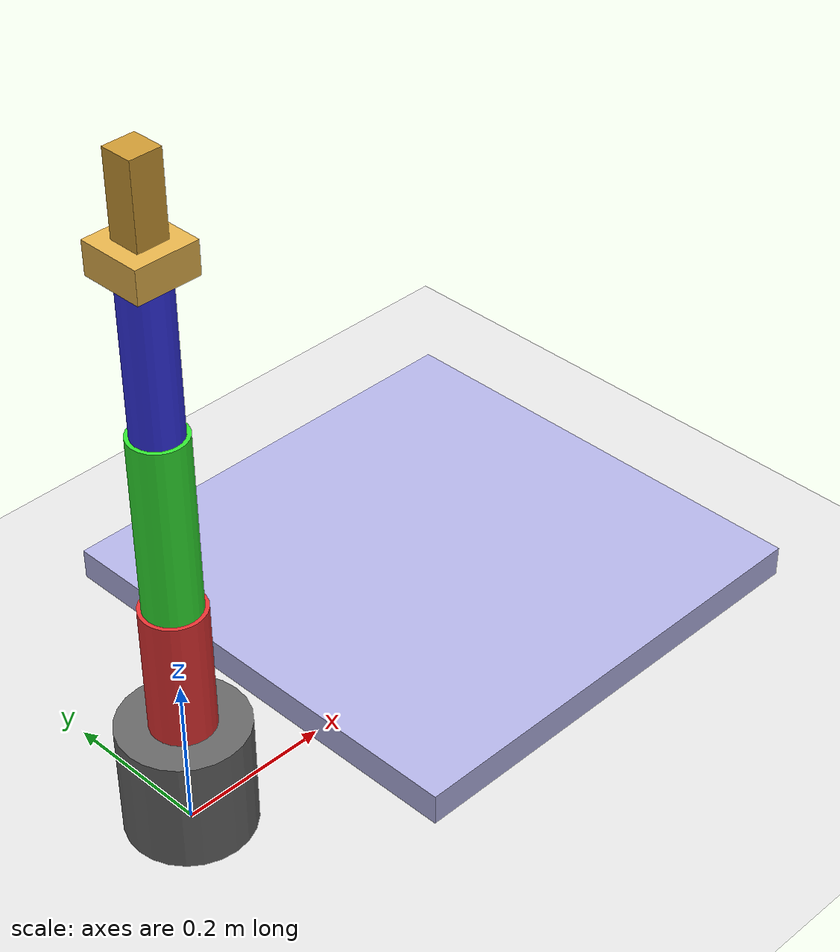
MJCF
<mujoco>
    <option timestep="0.002" gravity="0 0 -9.81"/>

    <asset>
        <!-- Materials for better visibility -->
        <material name="robot_base" rgba="0.4 0.4 0.4 1"/>
        <material name="link1_mat" rgba="0.9 0.2 0.2 1"/>
        <material name="link2_mat" rgba="0.2 0.9 0.2 1"/>
        <material name="link3_mat" rgba="0.2 0.2 0.9 1"/>
        <material name="tool_mat" rgba="0.8 0.6 0.2 1"/>
        <material name="surface_mat" rgba="0.7 0.7 0.9 1"/>
    </asset>

    <worldbody>
        <!-- Lighting -->
        <light pos="0 0 4" dir="0 0 -1"/>
        <light pos="2 2 3" dir="-1 -1 -1"/>

        <!-- Ground plane -->
        <geom name="floor" type="plane" size="2 2 0.1" rgba="0.9 0.9 0.9 1"/>

        <!-- Cleaning surface (table/counter) -->
        <body name="cleaning_surface" pos="0.4 0 0.15">
            <geom name="surface" type="box" size="0.3 0.3 0.02"
                  material="surface_mat" contype="1" conaffinity="1"/>
        </body>

        <!-- Robot base (fixed to ground) -->
        <body name="base" pos="0 0 0.05">
            <geom name="base_geom" type="cylinder" size="0.08 0.1"
                  material="robot_base" rgba="0.4 0.4 0.4 1"/>

            <!-- Link 1: Rotating base (red) -->
            <body name="link1" pos="0 0 0.15">
                <joint name="joint1" type="hinge" axis="0 0 1"
                       range="-180 180" damping="0.1"/>
                <geom name="link1_geom" type="cylinder" size="0.04 0.12"
                      material="link1_mat" rgba="0.9 0.2 0.2 1"/>

                <!-- Link 2: Shoulder (green) -->
                <body name="link2" pos="0 0 0.2">
                    <joint name="joint2" type="hinge" axis="0 1 0"
                           range="-90 90" damping="0.1"/>
                    <geom name="link2_geom" type="cylinder" size="0.035 0.15"
                          material="link2_mat" rgba="0.2 0.9 0.2 1"/>

                    <!-- Link 3: Elbow (blue) -->
                    <body name="link3" pos="0 0 0.25">
                        <joint name="joint3" type="hinge" axis="0 1 0"
                               range="-90 90" damping="0.1"/>
                        <geom name="link3_geom" type="cylinder" size="0.03 0.12"
                              material="link3_mat" rgba="0.2 0.2 0.9 1"/>

                        <!-- End effector with cleaning tool -->
                        <body name="tool" pos="0 0 0.18">
                            <!-- Tool handle -->
                            <geom name="tool_handle" type="box" size="0.02 0.02 0.05"
                                  material="tool_mat" rgba="0.8 0.6 0.2 1"/>
                            <!-- Cleaning sponge/brush head -->
                            <geom name="sponge" type="box" size="0.04 0.04 0.02"
                                  pos="0 0 -0.07" material="tool_mat"
                                  rgba="0.9 0.7 0.3 1" contype="1" conaffinity="1"/>
                        </body>
                    </body>
                </body>
            </body>
        </body>
    </worldbody>

    <actuator>
        <motor name="motor1" joint="joint1" gear="100" ctrllimited="true" ctrlrange="-50 50"/>
        <motor name="motor2" joint="joint2" gear="100" ctrllimited="true" ctrlrange="-50 50"/>
        <motor name="motor3" joint="joint3" gear="100" ctrllimited="true" ctrlrange="-50 50"/>
    </actuator>
</mujoco>
